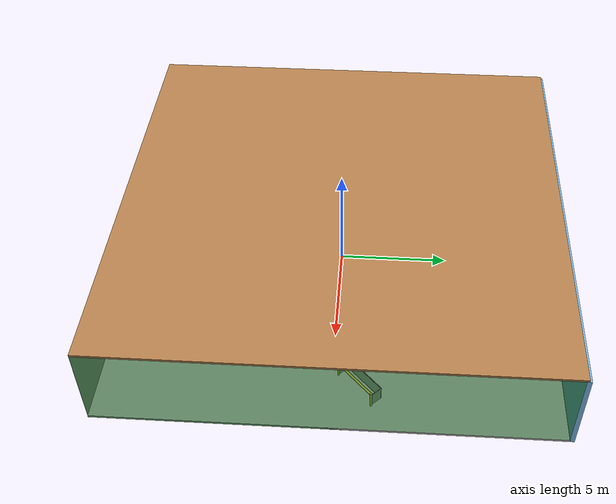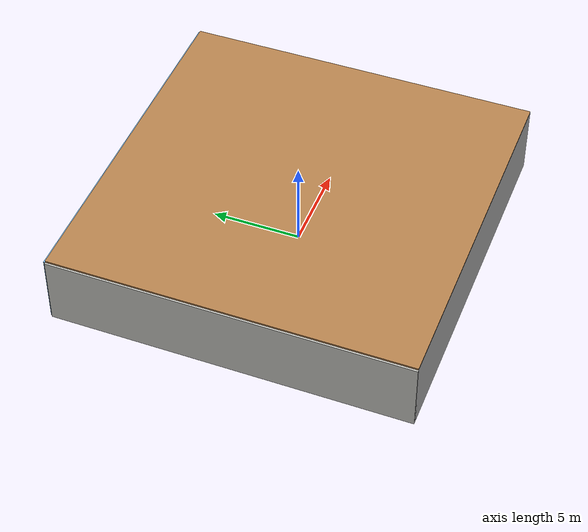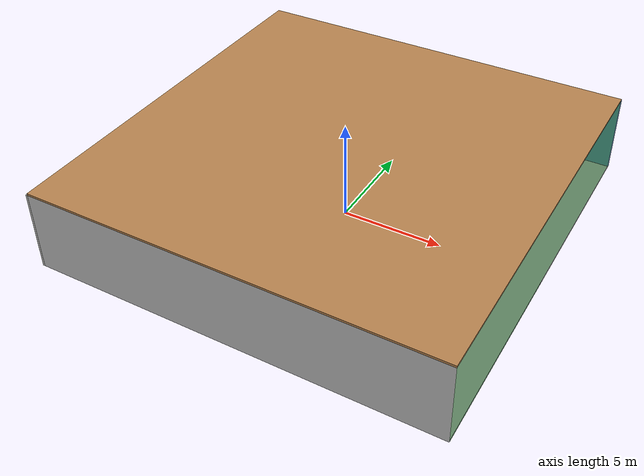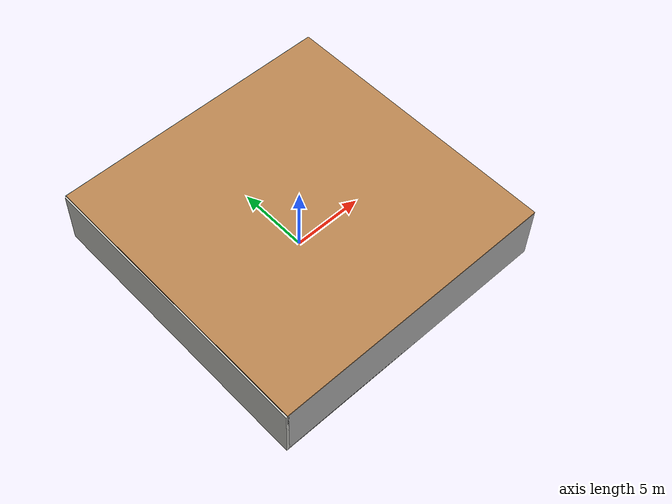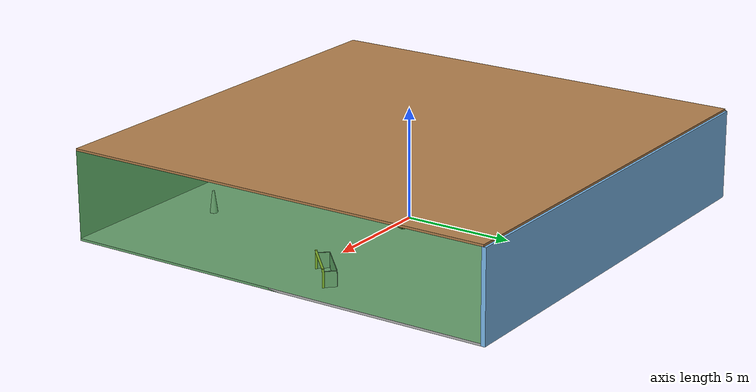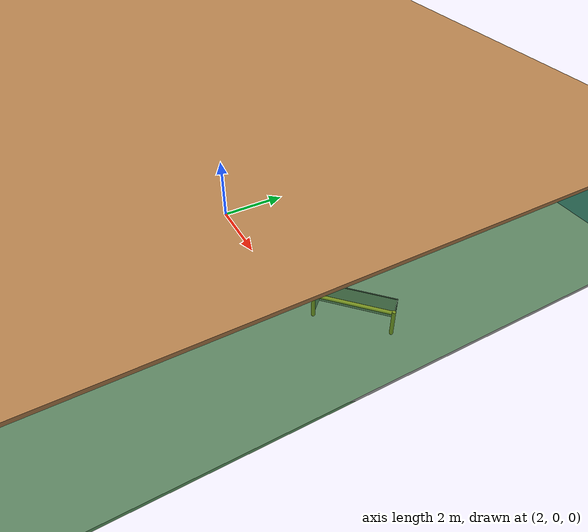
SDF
<sdf version="1.4">
 <world name="default">
  <physics type="ode">
   <max_step_size>0.001</max_step_size>
   <real_time_factor>1</real_time_factor>
   <real_time_update_rate>1000</real_time_update_rate>
   <gravity>0 0 -9.8</gravity>
  </physics>
  <scene><ambient>0.4 0.4 0.4 1</ambient><background>0.7 0.7 0.7 1</background><shadows>1</shadows></scene>
  <model name="Surrounding">
   <static>1</static>
   <link name="Ceiling">
    <collision name="Ceiling_Collision"><geometry><box><size>20 20 0.1</size></box></geometry></collision>
    <visual name="Ceiling_Visual">
     <geometry><box><size>20 20 0.1</size></box></geometry>
     <material>
      <script><uri>file://media/materials/scripts/gazebo.material</uri><name>Gazebo/WoodPallet</name></script>
     </material>
    </visual>
    <pose>0 0 4.05 0 0 0</pose>
   </link>
   <link name="Wall_South">
    <collision name="Wall_South_Collision">
     <geometry><box><size>20 0 4</size></box></geometry>
     <pose>0 0 2 0 -0 0</pose>
    </collision>
    <visual name="Wall_South_Visual">
     <pose>0 0 2 0 -0 0</pose>
     <geometry><box><size>20 0 4</size></box></geometry>
     <material>
      <script><uri>file://media/materials/scripts/gazebo.material</uri><name>Gazebo/Pioneer2Body</name></script>
     </material>
    </visual>
    <velocity_decay><linear>0</linear><angular>0</angular></velocity_decay>
    <pose>0 -10 0 0 -0 0</pose>
   </link>
   <link name="Wall_East">
    <collision name="Wall_21_Collision">
     <geometry><box><size>20 0 4</size></box></geometry>
     <pose>0 0 2 0 -0 0</pose>
    </collision>
    <visual name="Wall_21_Visual">
     <pose>0 0 2 0 -0 0</pose>
     <geometry><box><size>20 0 4</size></box></geometry>
     <material>
      <script><uri>file://media/materials/scripts/gazebo.material</uri><name>Gazebo/GreenTransparent</name></script>
     </material>
    </visual>
    <velocity_decay><linear>0</linear><angular>0</angular></velocity_decay>
    <pose>10 0 0 0 -0 1.5708</pose>
   </link>
   <link name="Wall_North">
    <collision name="Wall_22_Collision">
     <geometry><box><size>20 0.2 4</size></box></geometry>
     <pose>0 0 2 0 -0 0</pose>
    </collision>
    <visual name="Wall_22_Visual">
     <pose>0 0 2 0 -0 0</pose>
     <geometry><box><size>20 0.2 4</size></box></geometry>
     <material>
      <script><uri>file://media/materials/scripts/gazebo.material</uri><name>Gazebo/SkyBlue</name></script>
     </material>
    </visual>
    <velocity_decay><linear>0</linear><angular>0</angular></velocity_decay>
    <pose>0 10 0 0 -0 0</pose>
   </link>
   <link name="Wall_West">
    <collision name="Wall_23_Collision">
     <geometry><box><size>20 0.2 4</size></box></geometry>
     <pose>0 0 2 0 -0 0</pose>
    </collision>
    <visual name="Wall_23_Visual">
     <pose>0 0 2 0 -0 0</pose>
     <geometry><box><size>20 0.2 4</size></box></geometry>
     <material>
      <script><uri>file://media/materials/scripts/gazebo.material</uri><name>Gazebo/CeilingTiled</name></script>
     </material>
    </visual>
    <velocity_decay><linear>0</linear><angular>0</angular></velocity_decay>
    <pose>-10 0 0 0 0 -1.5708</pose>
   </link>
   <link name="Ground_link">
    <collision name="collision">
     <pose>0 0 .05 0 -0 0</pose>
     <geometry><box><size>20 20 0.1</size></box></geometry>
    </collision>
    <visual name="visual">
     <pose>0 0 .05 0 -0 0</pose>
     <geometry><box><size>20 20 0.1</size></box></geometry>
     <material>
      <script><uri>file://media/materials/scripts/gazebo.material</uri><name>Gazebo/JointAnchor</name></script>
     </material>
    </visual>
   </link>
   <static>1</static>
  </model>
  <spherical_coordinates>
   <surface_model>EARTH_WGS84</surface_model>
   <latitude_deg>0</latitude_deg>
   <longitude_deg>0</longitude_deg>
   <elevation>0</elevation>
   <heading_deg>0</heading_deg>
  </spherical_coordinates>
  <light name="lightball_0" type="diffuse">
   <diffuse>0.8 0.8 0.8 1</diffuse>
   <specular>0.2 0.2 0.2 1</specular>
   <attenuation>
    <range>100</range>
    <constant>0.7</constant>
    <linear>0.01</linear>
    <quadratic>0.001</quadratic>
   </attenuation>
   <direction>-0.5 0.1 -0.9</direction>
   <pose>-0.200696437528 7.13209837128 3.67571259377 0 0 0</pose>
  </light>
  <light name="lightball_1" type="diffuse">
   <diffuse>0.8 0.8 0.8 1</diffuse>
   <specular>0.2 0.2 0.2 1</specular>
   <attenuation>
    <range>100</range>
    <constant>0.7</constant>
    <linear>0.01</linear>
    <quadratic>0.001</quadratic>
   </attenuation>
   <direction>-0.5 0.1 -0.9</direction>
   <pose>7.31950688535 -4.49704336159 2.72291850905 0 0 0</pose>
  </light>
  <light name="lightball_2" type="diffuse">
   <diffuse>0.8 0.8 0.8 1</diffuse>
   <specular>0.2 0.2 0.2 1</specular>
   <attenuation>
    <range>100</range>
    <constant>0.7</constant>
    <linear>0.01</linear>
    <quadratic>0.001</quadratic>
   </attenuation>
   <direction>-0.5 0.1 -0.9</direction>
   <pose>-3.7859665857 2.26887223786 3.07801484278 0 0 0</pose>
  </light>
  <light name="lightball_3" type="diffuse">
   <diffuse>0.8 0.8 0.8 1</diffuse>
   <specular>0.2 0.2 0.2 1</specular>
   <attenuation>
    <range>100</range>
    <constant>0.7</constant>
    <linear>0.01</linear>
    <quadratic>0.001</quadratic>
   </attenuation>
   <direction>-0.5 0.1 -0.9</direction>
   <pose>1.1315039924 1.44254321252 1.21296992342 0 0 0</pose>
  </light>
  <light name="lightball_4" type="diffuse">
   <diffuse>0.8 0.8 0.8 1</diffuse>
   <specular>0.2 0.2 0.2 1</specular>
   <attenuation>
    <range>100</range>
    <constant>0.7</constant>
    <linear>0.01</linear>
    <quadratic>0.001</quadratic>
   </attenuation>
   <direction>-0.5 0.1 -0.9</direction>
   <pose>9.64211435012 3.35047991637 1.82942418755 0 0 0</pose>
  </light>
  <light name="lightball_5" type="diffuse">
   <diffuse>0.8 0.8 0.8 1</diffuse>
   <specular>0.2 0.2 0.2 1</specular>
   <attenuation>
    <range>100</range>
    <constant>0.7</constant>
    <linear>0.01</linear>
    <quadratic>0.001</quadratic>
   </attenuation>
   <direction>-0.5 0.1 -0.9</direction>
   <pose>-9.37663466137 2.90505152642 2.24089825473 0 0 0</pose>
  </light>
  <light name="lightball_6" type="diffuse">
   <diffuse>0.8 0.8 0.8 1</diffuse>
   <specular>0.2 0.2 0.2 1</specular>
   <attenuation>
    <range>100</range>
    <constant>0.7</constant>
    <linear>0.01</linear>
    <quadratic>0.001</quadratic>
   </attenuation>
   <direction>-0.5 0.1 -0.9</direction>
   <pose>-0.473018533298 6.3774563248 1.53813248335 0 0 0</pose>
  </light>
  <light name="lightball_7" type="diffuse">
   <diffuse>0.8 0.8 0.8 1</diffuse>
   <specular>0.2 0.2 0.2 1</specular>
   <attenuation>
    <range>100</range>
    <constant>0.7</constant>
    <linear>0.01</linear>
    <quadratic>0.001</quadratic>
   </attenuation>
   <direction>-0.5 0.1 -0.9</direction>
   <pose>1.50384044812 0.504820619627 1.1088097815 0 0 0</pose>
  </light>
  <light name="lightball_8" type="diffuse">
   <diffuse>0.8 0.8 0.8 1</diffuse>
   <specular>0.2 0.2 0.2 1</specular>
   <attenuation>
    <range>100</range>
    <constant>0.7</constant>
    <linear>0.01</linear>
    <quadratic>0.001</quadratic>
   </attenuation>
   <direction>-0.5 0.1 -0.9</direction>
   <pose>-7.70697418934 -2.29547078083 2.4056966717 0 0 0</pose>
  </light>
  <include><uri>model://table</uri><pose>-8.53010196799 5.5514818148 0 0 0 0.507093023925</pose></include>
  <include>
   <uri>model://textured_shapes</uri>
   <pose>-4.44660033728 6.99173105534 0 0 0 2.46157393613</pose>
  </include>
  <include>
   <uri>model://construction_cone</uri>
   <pose>-1.01338109381 5.37748725606 0 0 0 2.15391202296</pose>
  </include>
  <include><uri>model://cabinet</uri><pose>1.25128691343 0.558954454065 0 0 0 1.13525648421</pose></include>
  <include>
   <uri>model://construction_cone</uri>
   <pose>4.34406971317 -7.33953367672 0 0 0 0.614521855585</pose>
  </include>
  <include>
   <uri>model://robocup_3Dsim_goal</uri>
   <pose>8.00995698425 1.01835831567 0 0 0 2.33344357501</pose>
  </include>
 </world>
</sdf>

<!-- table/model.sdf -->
<sdf version="1.5">
  <model name="table">
    <static>true</static>
    <link name="link">
      <collision name="surface">
        <pose>0 0 1.0 0 0 0</pose>
        <geometry>
          <box>
            <size>1.5 0.8 0.03</size>
          </box>
        </geometry>
        <surface>
          <friction>
            <ode>
              <mu>0.6</mu>
              <mu2>0.6</mu2>
            </ode>
          </friction>
        </surface>
      </collision>
      <visual name="visual1">
        <pose>0 0 1.0 0 0 0</pose>
        <geometry>
          <box>
            <size>1.5 0.8 0.03</size>
          </box>
        </geometry>
        <material>
          <script>
            <uri>model://media/materials/scripts/gazebo.material</uri>
            <name>Gazebo/Wood</name>
          </script>
        </material>
      </visual>
      <collision name="front_left_leg">
        <pose>0.68 0.38 0.5 0 0 0</pose>
        <geometry>
          <cylinder>
            <radius>0.02</radius>
            <length>1.0</length>
          </cylinder>
        </geometry>
      </collision>
      <visual name="front_left_leg">
        <pose>0.68 0.38 0.5 0 0 0</pose>
        <geometry>
          <cylinder>
            <radius>0.02</radius>
            <length>1.0</length>
          </cylinder>
        </geometry>
        <material>
          <script>
            <uri>model://media/materials/scripts/gazebo.material</uri>
            <name>Gazebo/Grey</name>
          </script>
        </material>
      </visual>
      <collision name="front_right_leg">
        <pose>0.68 -0.38 0.5 0 0 0</pose>
        <geometry>
          <cylinder>
            <radius>0.02</radius>
            <length>1.0</length>
          </cylinder>
        </geometry>
      </collision>
      <visual name="front_right_leg">
        <pose>0.68 -0.38 0.5 0 0 0</pose>
        <geometry>
          <cylinder>
            <radius>0.02</radius>
            <length>1.0</length>
          </cylinder>
        </geometry>
        <material>
          <script>
            <uri>model://media/materials/scripts/gazebo.material</uri>
            <name>Gazebo/Grey</name>
          </script>
        </material>
      </visual>
      <collision name="back_right_leg">
        <pose>-0.68 -0.38 0.5 0 0 0</pose>
        <geometry>
          <cylinder>
            <radius>0.02</radius>
            <length>1.0</length>
          </cylinder>
        </geometry>
      </collision>
      <visual name="back_right_leg">
        <pose>-0.68 -0.38 0.5 0 0 0</pose>
        <geometry>
          <cylinder>
            <radius>0.02</radius>
            <length>1.0</length>
          </cylinder>
        </geometry>
        <material>
          <script>
            <uri>model://media/materials/scripts/gazebo.material</uri>
            <name>Gazebo/Grey</name>
          </script>
        </material>
      </visual>
      <collision name="back_left_leg">
        <pose>-0.68 0.38 0.5 0 0 0</pose>
        <geometry>
          <cylinder>
            <radius>0.02</radius>
            <length>1.0</length>
          </cylinder>
        </geometry>
      </collision>
      <visual name="back_left_leg">
        <pose>-0.68 0.38 0.5 0 0 0</pose>
        <geometry>
          <cylinder>
            <radius>0.02</radius>
            <length>1.0</length>
          </cylinder>
        </geometry>
        <material>
          <script>
            <uri>model://media/materials/scripts/gazebo.material</uri>
            <name>Gazebo/Grey</name>
          </script>
        </material>
      </visual>
    </link>
  </model>
</sdf>

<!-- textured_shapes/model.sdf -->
<sdf version="1.6">
  <model name="textured_shapes">
    <pose>0 0 0.5 0 0 0</pose>
    <link name="box">
      <pose>0 -1.5 0 0 0 0</pose>
      <collision name="collision">
        <geometry>
          <box>
            <size>1 1 1</size>
          </box>
        </geometry>
      </collision>
      <visual name="visual">
        <geometry>
          <box>
            <size>1 1 1</size>
          </box>
        </geometry>
        <material>
          <script>
            <uri>model://../model_source/models/textured_shapes/materials/scripts</uri>
            <uri>model://../model_source/models/textured_shapes/materials/textures</uri>
            <name>TexturedShape/Squares</name>
          </script>
        </material>
      </visual>
    </link>
    <link name="sphere">
      <collision name="collision">
        <geometry>
          <sphere>
            <radius>0.5</radius>
          </sphere>
        </geometry>
      </collision>
      <visual name="visual">
        <geometry>
          <sphere>
            <radius>0.5</radius>
          </sphere>
        </geometry>
        <material>
          <script>
            <uri>model://../model_source/models/textured_shapes/materials/scripts</uri>
            <uri>model://../model_source/models/textured_shapes/materials/textures</uri>
            <name>TexturedShape/Squares</name>
          </script>
        </material>
      </visual>
    </link>
    <link name="cylinder">
      <pose>0 1.5 0 0 0 0</pose>
      <collision name="collision">
        <geometry>
          <cylinder>
            <radius>0.5</radius>
            <length>1</length>
          </cylinder>
        </geometry>
      </collision>
      <visual name="visual">
        <geometry>
          <cylinder>
            <radius>0.5</radius>
            <length>1</length>
          </cylinder>
        </geometry>
        <material>
          <script>
            <uri>model://../model_source/models/textured_shapes/materials/scripts</uri>
            <uri>model://../model_source/models/textured_shapes/materials/textures</uri>
            <name>TexturedShape/Squares</name>
          </script>
        </material>
      </visual>
    </link>
  </model>
</sdf>

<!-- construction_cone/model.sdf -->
<sdf version="1.5">
  <model name="Construction Cone">
    <link name="link">
      <collision name="collision">
        <geometry>
          <mesh>
            <scale>10 10 10</scale>
            <uri>file://isr-testbed/construction_cone/meshes/construction_cone.dae</uri>
          </mesh>
        </geometry>
      </collision>
      <visual name="visual">
        <geometry>
          <mesh>
            <scale>10 10 10</scale>
            <uri>file://isr-testbed/construction_cone/meshes/construction_cone.dae</uri>
          </mesh>
        </geometry>
      </visual>
    </link>
  </model>
</sdf>

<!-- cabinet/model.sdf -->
<sdf version="1.5">
  <model name="cabinet">
    <static>true</static>
    <link name="cabinet_bottom_plate">
      <inertial>
        <pose>0 0 -1 0 0 0</pose>
        <inertia>
          <ixx>2.050000</ixx>
          <ixy>0</ixy>
          <ixz>0</ixz>
          <iyy>2.050000</iyy>
          <iyz>0</iyz>
          <izz>2.050000</izz>
        </inertia>
        <mass>25.000000</mass>
      </inertial>
      <collision name="cabinet_bottom_plate_geom">
        <pose>0 0 0.010000 0 0 0</pose>
        <geometry>
          <box>
            <size>0.450000 0.450000 0.020000</size>
          </box>
        </geometry>
      </collision>
      <visual name="cabinet_bottom_plate_geom_visual">
        <pose>0 0 0.010000 0 0 0</pose>
        <geometry>
          <box>
            <size>0.450000 0.450000 0.020000</size>
          </box>
        </geometry>
        <material>
          <script>
            <uri>model://media/materials/scripts/gazebo.material</uri>
            <name>Gazebo/Wood</name>
          </script>
        </material>
      </visual>
      <collision name="cabinet_bottom_plate_geom_cabinet_back_plate">
        <pose>0.235000 0 0.510000 0 0 0</pose>
        <geometry>
          <box>
            <size>0.020000 0.450000 1.020000</size>
          </box>
        </geometry>
      </collision>
      <visual name="cabinet_bottom_plate_geom_cabinet_back_plate_visual">
        <pose>0.235000 0 0.510000 0 0 0</pose>
        <geometry>
          <box>
            <size>0.020000 0.450000 1.020000</size>
          </box>
        </geometry>
        <material>
          <script>
            <uri>model://media/materials/scripts/gazebo.material</uri>
            <name>Gazebo/Wood</name>
          </script>
        </material>
      </visual>
      <collision name="cabinet_bottom_plate_geom_cabinet_left_plate">
        <pose>0 0.235000 0.510000 0 0 0</pose>
        <geometry>
          <box>
            <size>0.450000 0.020000 1.020000</size>
          </box>
        </geometry>
      </collision>
      <visual name="cabinet_bottom_plate_geom_cabinet_left_plate_visual">
        <pose>0 0.235000 0.510000 0 0 0</pose>
        <geometry>
          <box>
            <size>0.450000 0.020000 1.020000</size>
          </box>
        </geometry>
        <material>
          <script>
            <uri>model://media/materials/scripts/gazebo.material</uri>
            <name>Gazebo/Wood</name>
          </script>
        </material>
      </visual>
      <collision name="cabinet_bottom_plate_geom_cabinet_middle_plate">
        <pose>0 0 0.510000 0 0 0</pose>
        <geometry>
          <box>
            <size>0.450000 0.450000 0.020000</size>
          </box>
        </geometry>
      </collision>
      <visual name="cabinet_bottom_plate_geom_cabinet_middle_plate_visual">
        <pose>0 0 0.510000 0 0 0</pose>
        <geometry>
          <box>
            <size>0.450000 0.450000 0.020000</size>
          </box>
        </geometry>
        <material>
          <script>
            <uri>model://media/materials/scripts/gazebo.material</uri>
            <name>Gazebo/Wood</name>
          </script>
        </material>
      </visual>
      <collision name="cabinet_bottom_plate_geom_cabinet_right_plate">
        <pose>0 -0.235000 0.510000 0 0 0</pose>
        <geometry>
          <box>
            <size>0.450000 0.020000 1.020000</size>
          </box>
        </geometry>
      </collision>
      <visual name="cabinet_bottom_plate_geom_cabinet_right_plate_visual">
        <pose>0 -0.235000 0.510000 0 0 0</pose>
        <geometry>
          <box>
            <size>0.450000 0.020000 1.020000</size>
          </box>
        </geometry>
        <material>
          <script>
            <uri>model://media/materials/scripts/gazebo.material</uri>
            <name>Gazebo/Wood</name>
          </script>
        </material>
      </visual>
      <collision name="cabinet_bottom_plate_geom_cabinet_top_plate">
        <pose>0 0 1.010000 0 0 0</pose>
        <geometry>
          <box>
            <size>0.450000 0.450000 0.020000</size>
          </box>
        </geometry>
      </collision>
      <visual name="cabinet_bottom_plate_geom_cabinet_top_plate_visual">
        <pose>0 0 1.010000 0 0 0</pose>
        <geometry>
          <box>
            <size>0.450000 0.450000 0.020000</size>
          </box>
        </geometry>
        <material>
          <script>
            <uri>model://media/materials/scripts/gazebo.material</uri>
            <name>Gazebo/Wood</name>
          </script>
        </material>
      </visual>
    </link>
  </model>
</sdf>

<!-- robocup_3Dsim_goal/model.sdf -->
<sdf version="1.5">
  <model name="robocup_3d_goal">
    <static>true</static>
    <link name="left_post">
      <pose>0 1.05 0.45 0 0 0</pose>
      <collision name="collision">
        <geometry>
          <cylinder>
            <radius>0.05</radius>
            <length>0.9</length>
          </cylinder>
        </geometry>
      </collision>
      <visual name="visual">
        <geometry>
          <cylinder>
            <radius>0.05</radius>
            <length>0.9</length>
          </cylinder>
        </geometry>
        <material>
          <script>
            <uri>file://media/materials/scripts/gazebo.material</uri>
            <name>Gazebo/ZincYellow</name>
          </script>
        </material>
      </visual>
    </link>
    <link name="left_support_horiz_lower">
      <pose>0.30 1.05 0.01 0 0 0</pose>
      <collision name="collision">
        <geometry>
          <box>
            <size>0.50 0.02 0.02</size>
          </box>
        </geometry>
      </collision>
      <visual name="visual">
        <geometry>
          <box>
            <size>0.50 0.02 0.02</size>
          </box>
        </geometry>
        <material>
          <script>
            <uri>file://media/materials/scripts/gazebo.material</uri>
            <name>Gazebo/White</name>
          </script>
        </material>
      </visual>
    </link>
    <link name="left_support_horiz_upper">
      <pose>0.30 1.05 0.79 0 0 0</pose>
      <collision name="collision">
        <geometry>
          <box>
            <size>0.50 0.02 0.02</size>
          </box>
        </geometry>
      </collision>
      <visual name="visual">
        <geometry>
          <box>
            <size>0.50 0.02 0.02</size>
          </box>
        </geometry>
        <material>
          <script>
            <uri>file://media/materials/scripts/gazebo.material</uri>
            <name>Gazebo/White</name>
          </script>
        </material>
      </visual>
    </link>
    <link name="left_support_vertical">
      <pose>0.56 1.05 0.4 0 1.5708 0</pose>
      <collision name="collision">
        <geometry>
          <box>
            <size>0.80 0.02 0.02</size>
          </box>
        </geometry>
      </collision>
      <visual name="visual">
        <geometry>
          <box>
            <size>0.80 0.02 0.02</size>
          </box>
        </geometry>
        <material>
          <script>
            <uri>file://media/materials/scripts/gazebo.material</uri>
            <name>Gazebo/White</name>
          </script>
        </material>
      </visual>
    </link>
    <link name="right_support_horiz_lower">
      <pose>0.30 -1.05 0.01 0 0 0</pose>
      <collision name="collision">
        <geometry>
          <box>
            <size>0.50 0.02 0.02</size>
          </box>
        </geometry>
      </collision>
      <visual name="visual">
        <geometry>
          <box>
            <size>0.50 0.02 0.02</size>
          </box>
        </geometry>
        <material>
          <script>
            <uri>file://media/materials/scripts/gazebo.material</uri>
            <name>Gazebo/White</name>
          </script>
        </material>
      </visual>
    </link>
    <link name="right_support_horiz_upper">
      <pose>0.30 -1.05 0.79 0 0 0</pose>
      <collision name="collision">
        <geometry>
          <box>
            <size>0.50 0.02 0.02</size>
          </box>
        </geometry>
      </collision>
      <visual name="visual">
        <geometry>
          <box>
            <size>0.50 0.02 0.02</size>
          </box>
        </geometry>
        <material>
          <script>
            <uri>file://media/materials/scripts/gazebo.material</uri>
            <name>Gazebo/White</name>
          </script>
        </material>
      </visual>
    </link>
    <link name="right_support_vertical">
      <pose>0.56 -1.05 0.4 0 1.5708 0</pose>
      <collision name="collision">
        <geometry>
          <box>
            <size>0.80 0.02 0.02</size>
          </box>
        </geometry>
      </collision>
      <visual name="visual">
        <geometry>
          <box>
            <size>0.80 0.02 0.02</size>
          </box>
        </geometry>
        <material>
          <script>
            <uri>file://media/materials/scripts/gazebo.material</uri>
            <name>Gazebo/White</name>
          </script>
        </material>
      </visual>
    </link>
    <link name="center_support_horiz_lower">
      <pose>0.56 0 0.01 0 1.5708 0</pose>
      <collision name="collision">
        <geometry>
          <box>
            <size>0.02 2.08 0.02</size>
          </box>
        </geometry>
      </collision>
      <visual name="visual">
        <geometry>
          <box>
            <size>0.02 2.08 0.02</size>
          </box>
        </geometry>
        <material>
          <script>
            <uri>file://media/materials/scripts/gazebo.material</uri>
            <name>Gazebo/White</name>
          </script>
        </material>
      </visual>
    </link>
    <link name="center_support_horiz_upper">
      <pose>0.56 0 0.79 0 1.5708 0</pose>
      <collision name="collision">
        <geometry>
          <box>
            <size>0.02 2.08 0.02</size>
          </box>
        </geometry>
      </collision>
      <visual name="visual">
        <geometry>
          <box>
            <size>0.02 2.08 0.02</size>
          </box>
        </geometry>
        <material>
          <script>
            <uri>file://media/materials/scripts/gazebo.material</uri>
            <name>Gazebo/White</name>
          </script>
        </material>
      </visual>
    </link>
    <link name="right_post">
      <pose>0 -1.05 0.45 0 0 0</pose>
      <collision name="collision">
        <geometry>
          <cylinder>
            <radius>0.05</radius>
            <length>0.9</length>
          </cylinder>
        </geometry>
      </collision>
      <visual name="visual">
        <geometry>
          <cylinder>
            <radius>0.05</radius>
            <length>0.9</length>
          </cylinder>
        </geometry>
        <material>
          <script>
            <uri>file://media/materials/scripts/gazebo.material</uri>
            <name>Gazebo/ZincYellow</name>
          </script>
        </material>
      </visual>
    </link>
    <link name="crossbar">
      <pose>0 0 0.85 1.57 1.57 0</pose>
      <collision name="collision">
        <geometry>
          <cylinder>
            <radius>0.05</radius>
            <length>2.0</length>
          </cylinder>
        </geometry>
      </collision>
      <visual name="visual">
        <geometry>
          <cylinder>
            <radius>0.05</radius>
            <length>2.0</length>
          </cylinder>
        </geometry>
        <material>
          <script>
            <uri>file://media/materials/scripts/gazebo.material</uri>
            <name>Gazebo/ZincYellow</name>
          </script>
        </material>
      </visual>
    </link>
    <link name="center_net">
      <pose>0.56 0 0.40 0 0 0</pose>
      <collision name="collision">
        <geometry>
          <box>
            <size>0.01 2.1 0.80</size>
          </box>
        </geometry>
      </collision>
      <visual name="visual">
        <geometry>
          <box>
            <size>0.01 2.1 0.80</size>
          </box>
        </geometry>
        <material>
          <script>
            <uri>model://../model_source/models/robocup09_spl_field/materials/scripts/</uri>
            <uri>model://../model_source/models/robocup09_spl_field/materials/textures/</uri>
            <name>RoboCup/Net</name>
          </script>
        </material>
      </visual>
    </link>
    <link name="left_net">
      <pose>0.30 1.05 0.40 0 0 0</pose>
      <collision name="collision">
        <geometry>
          <box>
            <size>0.50 0.01 0.76</size>
          </box>
        </geometry>
      </collision>
      <visual name="visual">
        <geometry>
          <box>
            <size>0.50 0.01 0.76</size>
          </box>
        </geometry>
        <material>
          <script>
            <uri>model://../model_source/models/robocup09_spl_field/materials/scripts/</uri>
            <uri>model://../model_source/models/robocup09_spl_field/materials/textures/</uri>
            <name>RoboCup/Net</name>
          </script>
        </material>
      </visual>
    </link>
    <link name="right_net">
      <pose>0.30 -1.05 0.40 0 0 0</pose>
      <collision name="collision">
        <geometry>
          <box>
            <size>0.50 0.01 0.76</size>
          </box>
        </geometry>
      </collision>
      <visual name="visual">
        <geometry>
          <box>
            <size>0.50 0.01 0.76</size>
          </box>
        </geometry>
        <material>
          <script>
            <uri>model://../model_source/models/robocup09_spl_field/materials/scripts/</uri>
            <uri>model://../model_source/models/robocup09_spl_field/materials/textures/</uri>
            <name>RoboCup/Net</name>
          </script>
        </material>
      </visual>
    </link>
  </model>
</sdf>
